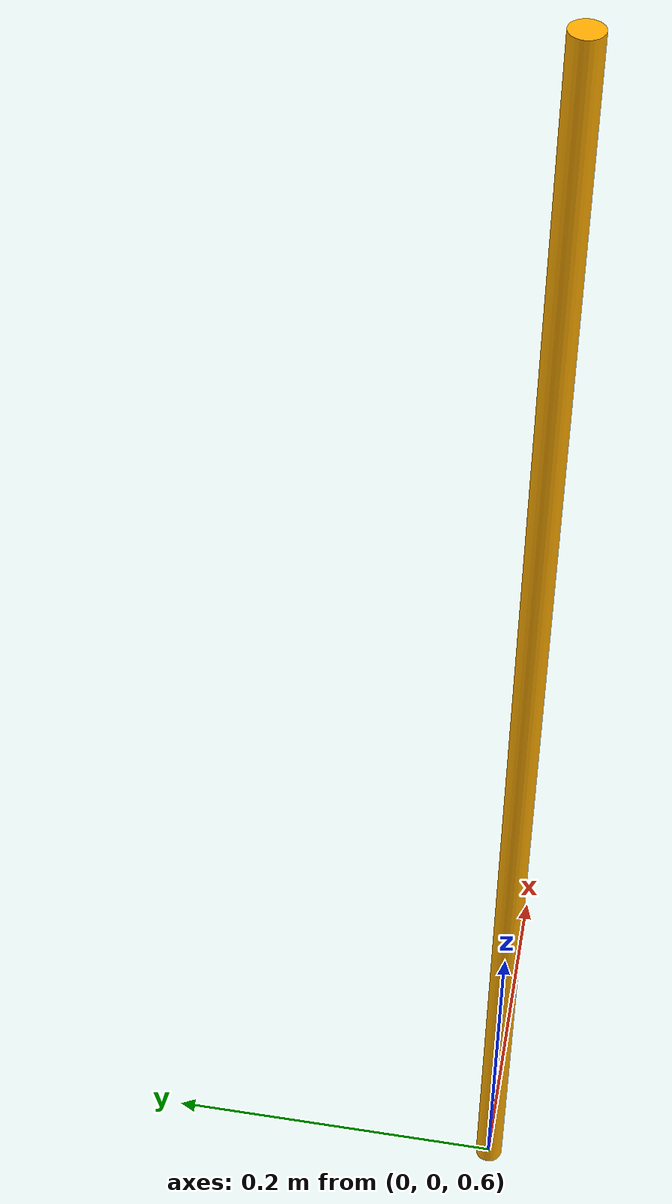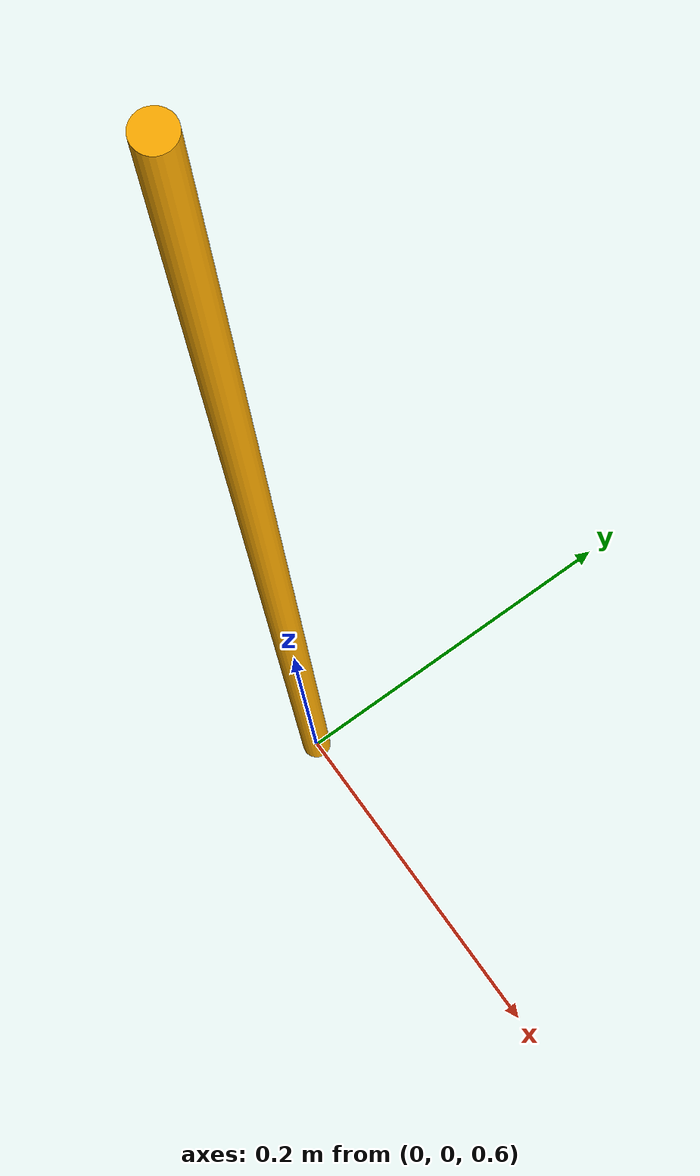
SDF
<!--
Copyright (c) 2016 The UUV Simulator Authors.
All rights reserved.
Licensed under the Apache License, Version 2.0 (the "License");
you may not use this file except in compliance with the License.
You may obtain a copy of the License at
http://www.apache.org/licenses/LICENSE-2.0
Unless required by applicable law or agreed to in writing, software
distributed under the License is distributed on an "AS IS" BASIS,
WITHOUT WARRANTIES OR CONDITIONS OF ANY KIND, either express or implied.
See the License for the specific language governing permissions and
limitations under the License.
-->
<?xml version="1.0" ?>
<sdf version="1.5">
  <model name="yellow_flare">
    <static>true</static>
    <link name="link">
      <collision name="flare_geom">
        <pose>0 0 0 0 0 0</pose>
        <geometry>
          <cylinder>
            <radius>0.008</radius>
            <length>0.8</length>
          </cylinder>
        </geometry>
      </collision>
      <visual name="flare_visual">
        <pose degrees="true">0 0 1 0 0 0</pose>
        <geometry>
          <cylinder>
            <radius>0.008</radius>
            <length>0.8</length>
          </cylinder>
        </geometry>
        <material>
          <ambient>1 0.675 0 1</ambient>
          <diffuse>1 0.675 0 1</diffuse>
          <specular>1 0.675 0 1</specular>
        </material>
      </visual>
    </link>
  </model>
</sdf>
